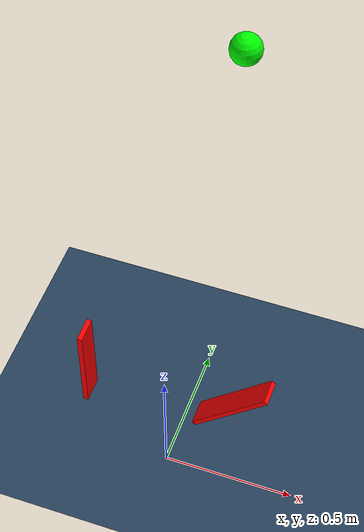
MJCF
<mujoco model="empty">

  <visual>
    <headlight diffuse="0.6 0.6 0.6"  ambient="0.3 0.3 0.3" specular="0 0 0"/>
    <rgba haze="0.15 0.25 0.35 1"/>
    <global azimuth="120" elevation="-20"/>
  </visual>

  <asset>
    <texture type="skybox" builtin="gradient" rgb1="0.3 0.5 0.7" rgb2="0 0 0" width="512"
        height="3072"/>
    <texture type="2d" name="groundplane" builtin="checker" mark="edge" rgb1="0.2 0.3 0.4"
        rgb2="0.1 0.2 0.3" markrgb="0.8 0.8 0.8" width="300" height="300"/>
    <material name="groundplane" texture="groundplane" texuniform="true" texrepeat="5 5"
        reflectance="0.2"/>
  </asset>

  <worldbody>
    <light pos="0 0 1.5" dir="0 0 -1" directional="true"/>
    <geom name="floor" size="0 0 0.05" type="plane" material="groundplane"/>

    <body pos="-0.4 0.2 0.2" name="red_box">
      <geom  type="box" size="0.01 0.05 0.2" rgba="1 0 0 1"/>
      <joint type="free"/>
    </body>
    <body pos="0.2 0.2 0.2" euler="0 45 0" name="red_slide">
      <geom  type="box" size="0.01 0.05 0.2" rgba="1 0 0 1" solref="-10000 -10"/>
    </body>
    <body pos="0.2 0.2 2" name="green_sphere">
      <freejoint/>
      <geom  size="0.05" rgba="0 1 0 1" solref="-10000 -10" density="1340" />
    </body>
  </worldbody>

</mujoco>
